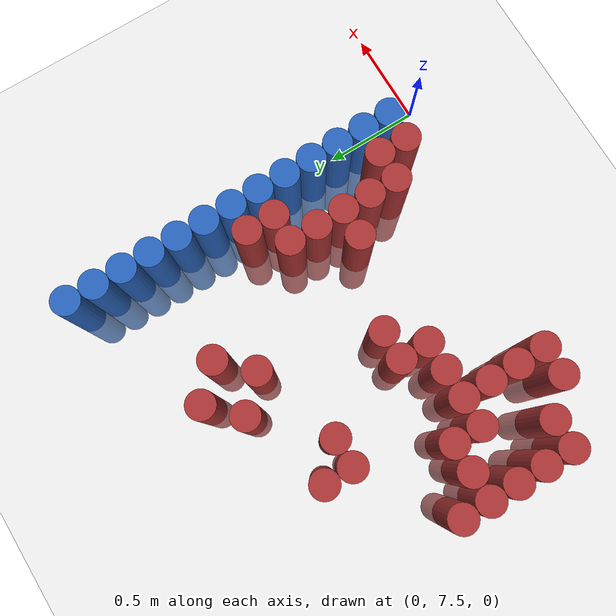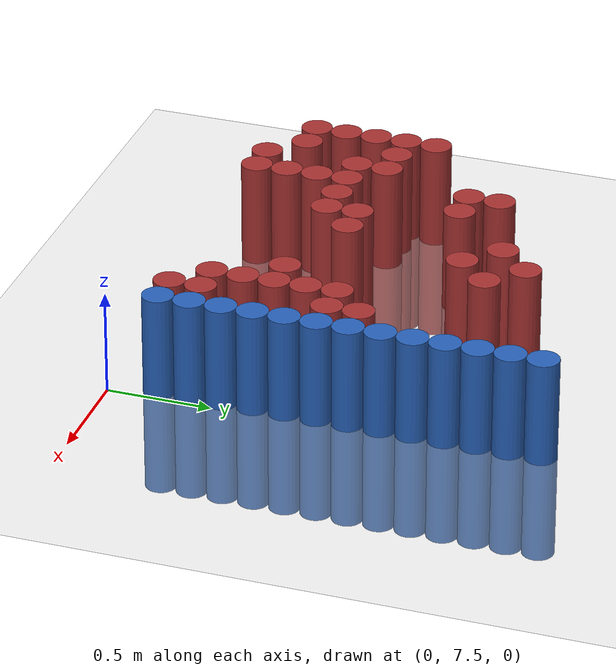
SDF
<sdf version="1.6">
 <world name="default">
  <model name="ground_plane">
   <static>1</static>
   <link name="link">
    <collision name="collision">
     <geometry><plane><normal>0 0 1</normal><size>100 100</size></plane></geometry>
     <surface><friction><ode><mu>100</mu><mu2>50</mu2></ode></friction></surface>
    </collision>
    <visual name="visual">
     <cast_shadows>0</cast_shadows>
     <geometry><plane><normal>0 0 1</normal><size>100 100</size></plane></geometry>
     <material>
      <script><uri>file://media/materials/scripts/gazebo.material</uri><name>Gazebo/Grey</name></script>
     </material>
    </visual>
   </link>
  </model>
  <model name="unit_cylinder_222">
   <static>1</static>
   <pose>-1.875000 7.875000 0.000000 0.000000 0.000000 0.000000</pose>
   <link name="link">
    <inertial>
     <mass>1</mass>
     <inertia><ixx>0.145833</ixx><ixy>0</ixy><ixz>0</ixz><iyy>0.145833</iyy><iyz>0</iyz><izz>0.125</izz></inertia>
    </inertial>
    <collision name="collision">
     <geometry><cylinder><radius>0.075000</radius><length>1</length></cylinder></geometry>
    </collision>
    <visual name="visual">
     <geometry><cylinder><radius>0.075000</radius><length>1</length></cylinder></geometry>
     <material>
      <ambient>0.648000 0.192000 0.192000 1</ambient>
      <diffuse>0.648000 0.192000 0.192000 1</diffuse>
     </material>
     <material>
      <script><name>Gazebo/Grey</name><uri>file://media/materials/scripts/gazebo.material</uri></script>
     </material>
    </visual>
   </link>
  </model>
  <model name="unit_cylinder_223">
   <static>1</static>
   <pose>-1.875000 8.025000 0.000000 0.000000 0.000000 0.000000</pose>
   <link name="link">
    <inertial>
     <mass>1</mass>
     <inertia><ixx>0.145833</ixx><ixy>0</ixy><ixz>0</ixz><iyy>0.145833</iyy><iyz>0</iyz><izz>0.125</izz></inertia>
    </inertial>
    <collision name="collision">
     <geometry><cylinder><radius>0.075000</radius><length>1</length></cylinder></geometry>
    </collision>
    <visual name="visual">
     <geometry><cylinder><radius>0.075000</radius><length>1</length></cylinder></geometry>
     <material>
      <ambient>0.648000 0.192000 0.192000 1</ambient>
      <diffuse>0.648000 0.192000 0.192000 1</diffuse>
     </material>
     <material>
      <script><name>Gazebo/Grey</name><uri>file://media/materials/scripts/gazebo.material</uri></script>
     </material>
    </visual>
   </link>
  </model>
  <model name="unit_cylinder_224">
   <static>1</static>
   <pose>-1.875000 8.175000 0.000000 0.000000 0.000000 0.000000</pose>
   <link name="link">
    <inertial>
     <mass>1</mass>
     <inertia><ixx>0.145833</ixx><ixy>0</ixy><ixz>0</ixz><iyy>0.145833</iyy><iyz>0</iyz><izz>0.125</izz></inertia>
    </inertial>
    <collision name="collision">
     <geometry><cylinder><radius>0.075000</radius><length>1</length></cylinder></geometry>
    </collision>
    <visual name="visual">
     <geometry><cylinder><radius>0.075000</radius><length>1</length></cylinder></geometry>
     <material>
      <ambient>0.648000 0.192000 0.192000 1</ambient>
      <diffuse>0.648000 0.192000 0.192000 1</diffuse>
     </material>
     <material>
      <script><name>Gazebo/Grey</name><uri>file://media/materials/scripts/gazebo.material</uri></script>
     </material>
    </visual>
   </link>
  </model>
  <model name="unit_cylinder_225">
   <static>1</static>
   <pose>-1.875000 8.325000 0.000000 0.000000 0.000000 0.000000</pose>
   <link name="link">
    <inertial>
     <mass>1</mass>
     <inertia><ixx>0.145833</ixx><ixy>0</ixy><ixz>0</ixz><iyy>0.145833</iyy><iyz>0</iyz><izz>0.125</izz></inertia>
    </inertial>
    <collision name="collision">
     <geometry><cylinder><radius>0.075000</radius><length>1</length></cylinder></geometry>
    </collision>
    <visual name="visual">
     <geometry><cylinder><radius>0.075000</radius><length>1</length></cylinder></geometry>
     <material>
      <ambient>0.648000 0.192000 0.192000 1</ambient>
      <diffuse>0.648000 0.192000 0.192000 1</diffuse>
     </material>
     <material>
      <script><name>Gazebo/Grey</name><uri>file://media/materials/scripts/gazebo.material</uri></script>
     </material>
    </visual>
   </link>
  </model>
  <model name="unit_cylinder_226">
   <static>1</static>
   <pose>-1.875000 8.475000 0.000000 0.000000 0.000000 0.000000</pose>
   <link name="link">
    <inertial>
     <mass>1</mass>
     <inertia><ixx>0.145833</ixx><ixy>0</ixy><ixz>0</ixz><iyy>0.145833</iyy><iyz>0</iyz><izz>0.125</izz></inertia>
    </inertial>
    <collision name="collision">
     <geometry><cylinder><radius>0.075000</radius><length>1</length></cylinder></geometry>
    </collision>
    <visual name="visual">
     <geometry><cylinder><radius>0.075000</radius><length>1</length></cylinder></geometry>
     <material>
      <ambient>0.648000 0.192000 0.192000 1</ambient>
      <diffuse>0.648000 0.192000 0.192000 1</diffuse>
     </material>
     <material>
      <script><name>Gazebo/Grey</name><uri>file://media/materials/scripts/gazebo.material</uri></script>
     </material>
    </visual>
   </link>
  </model>
  <model name="unit_cylinder_230">
   <static>1</static>
   <pose>-1.725000 7.875000 0.000000 0.000000 0.000000 0.000000</pose>
   <link name="link">
    <inertial>
     <mass>1</mass>
     <inertia><ixx>0.145833</ixx><ixy>0</ixy><ixz>0</ixz><iyy>0.145833</iyy><iyz>0</iyz><izz>0.125</izz></inertia>
    </inertial>
    <collision name="collision">
     <geometry><cylinder><radius>0.075000</radius><length>1</length></cylinder></geometry>
    </collision>
    <visual name="visual">
     <geometry><cylinder><radius>0.075000</radius><length>1</length></cylinder></geometry>
     <material>
      <ambient>0.648000 0.192000 0.192000 1</ambient>
      <diffuse>0.648000 0.192000 0.192000 1</diffuse>
     </material>
     <material>
      <script><name>Gazebo/Grey</name><uri>file://media/materials/scripts/gazebo.material</uri></script>
     </material>
    </visual>
   </link>
  </model>
  <model name="unit_cylinder_231">
   <static>1</static>
   <pose>-1.725000 8.325000 0.000000 0.000000 0.000000 0.000000</pose>
   <link name="link">
    <inertial>
     <mass>1</mass>
     <inertia><ixx>0.145833</ixx><ixy>0</ixy><ixz>0</ixz><iyy>0.145833</iyy><iyz>0</iyz><izz>0.125</izz></inertia>
    </inertial>
    <collision name="collision">
     <geometry><cylinder><radius>0.075000</radius><length>1</length></cylinder></geometry>
    </collision>
    <visual name="visual">
     <geometry><cylinder><radius>0.075000</radius><length>1</length></cylinder></geometry>
     <material>
      <ambient>0.648000 0.192000 0.192000 1</ambient>
      <diffuse>0.648000 0.192000 0.192000 1</diffuse>
     </material>
     <material>
      <script><name>Gazebo/Grey</name><uri>file://media/materials/scripts/gazebo.material</uri></script>
     </material>
    </visual>
   </link>
  </model>
  <model name="unit_cylinder_233">
   <static>1</static>
   <pose>-1.575000 7.725000 0.000000 0.000000 0.000000 0.000000</pose>
   <link name="link">
    <inertial>
     <mass>1</mass>
     <inertia><ixx>0.145833</ixx><ixy>0</ixy><ixz>0</ixz><iyy>0.145833</iyy><iyz>0</iyz><izz>0.125</izz></inertia>
    </inertial>
    <collision name="collision">
     <geometry><cylinder><radius>0.075000</radius><length>1</length></cylinder></geometry>
    </collision>
    <visual name="visual">
     <geometry><cylinder><radius>0.075000</radius><length>1</length></cylinder></geometry>
     <material>
      <ambient>0.648000 0.192000 0.192000 1</ambient>
      <diffuse>0.648000 0.192000 0.192000 1</diffuse>
     </material>
     <material>
      <script><name>Gazebo/Grey</name><uri>file://media/materials/scripts/gazebo.material</uri></script>
     </material>
    </visual>
   </link>
  </model>
  <model name="unit_cylinder_234">
   <static>1</static>
   <pose>-1.575000 8.175000 0.000000 0.000000 0.000000 0.000000</pose>
   <link name="link">
    <inertial>
     <mass>1</mass>
     <inertia><ixx>0.145833</ixx><ixy>0</ixy><ixz>0</ixz><iyy>0.145833</iyy><iyz>0</iyz><izz>0.125</izz></inertia>
    </inertial>
    <collision name="collision">
     <geometry><cylinder><radius>0.075000</radius><length>1</length></cylinder></geometry>
    </collision>
    <visual name="visual">
     <geometry><cylinder><radius>0.075000</radius><length>1</length></cylinder></geometry>
     <material>
      <ambient>0.648000 0.192000 0.192000 1</ambient>
      <diffuse>0.648000 0.192000 0.192000 1</diffuse>
     </material>
     <material>
      <script><name>Gazebo/Grey</name><uri>file://media/materials/scripts/gazebo.material</uri></script>
     </material>
    </visual>
   </link>
  </model>
  <model name="unit_cylinder_235">
   <static>1</static>
   <pose>-1.575000 8.325000 0.000000 0.000000 0.000000 0.000000</pose>
   <link name="link">
    <inertial>
     <mass>1</mass>
     <inertia><ixx>0.145833</ixx><ixy>0</ixy><ixz>0</ixz><iyy>0.145833</iyy><iyz>0</iyz><izz>0.125</izz></inertia>
    </inertial>
    <collision name="collision">
     <geometry><cylinder><radius>0.075000</radius><length>1</length></cylinder></geometry>
    </collision>
    <visual name="visual">
     <geometry><cylinder><radius>0.075000</radius><length>1</length></cylinder></geometry>
     <material>
      <ambient>0.648000 0.192000 0.192000 1</ambient>
      <diffuse>0.648000 0.192000 0.192000 1</diffuse>
     </material>
     <material>
      <script><name>Gazebo/Grey</name><uri>file://media/materials/scripts/gazebo.material</uri></script>
     </material>
    </visual>
   </link>
  </model>
  <model name="unit_cylinder_237">
   <static>1</static>
   <pose>-1.425000 7.725000 0.000000 0.000000 0.000000 0.000000</pose>
   <link name="link">
    <inertial>
     <mass>1</mass>
     <inertia><ixx>0.145833</ixx><ixy>0</ixy><ixz>0</ixz><iyy>0.145833</iyy><iyz>0</iyz><izz>0.125</izz></inertia>
    </inertial>
    <collision name="collision">
     <geometry><cylinder><radius>0.075000</radius><length>1</length></cylinder></geometry>
    </collision>
    <visual name="visual">
     <geometry><cylinder><radius>0.075000</radius><length>1</length></cylinder></geometry>
     <material>
      <ambient>0.648000 0.192000 0.192000 1</ambient>
      <diffuse>0.648000 0.192000 0.192000 1</diffuse>
     </material>
     <material>
      <script><name>Gazebo/Grey</name><uri>file://media/materials/scripts/gazebo.material</uri></script>
     </material>
    </visual>
   </link>
  </model>
  <model name="unit_cylinder_238">
   <static>1</static>
   <pose>-1.425000 7.875000 0.000000 0.000000 0.000000 0.000000</pose>
   <link name="link">
    <inertial>
     <mass>1</mass>
     <inertia><ixx>0.145833</ixx><ixy>0</ixy><ixz>0</ixz><iyy>0.145833</iyy><iyz>0</iyz><izz>0.125</izz></inertia>
    </inertial>
    <collision name="collision">
     <geometry><cylinder><radius>0.075000</radius><length>1</length></cylinder></geometry>
    </collision>
    <visual name="visual">
     <geometry><cylinder><radius>0.075000</radius><length>1</length></cylinder></geometry>
     <material>
      <ambient>0.648000 0.192000 0.192000 1</ambient>
      <diffuse>0.648000 0.192000 0.192000 1</diffuse>
     </material>
     <material>
      <script><name>Gazebo/Grey</name><uri>file://media/materials/scripts/gazebo.material</uri></script>
     </material>
    </visual>
   </link>
  </model>
  <model name="unit_cylinder_239">
   <static>1</static>
   <pose>-1.425000 8.025000 0.000000 0.000000 0.000000 0.000000</pose>
   <link name="link">
    <inertial>
     <mass>1</mass>
     <inertia><ixx>0.145833</ixx><ixy>0</ixy><ixz>0</ixz><iyy>0.145833</iyy><iyz>0</iyz><izz>0.125</izz></inertia>
    </inertial>
    <collision name="collision">
     <geometry><cylinder><radius>0.075000</radius><length>1</length></cylinder></geometry>
    </collision>
    <visual name="visual">
     <geometry><cylinder><radius>0.075000</radius><length>1</length></cylinder></geometry>
     <material>
      <ambient>0.648000 0.192000 0.192000 1</ambient>
      <diffuse>0.648000 0.192000 0.192000 1</diffuse>
     </material>
     <material>
      <script><name>Gazebo/Grey</name><uri>file://media/materials/scripts/gazebo.material</uri></script>
     </material>
    </visual>
   </link>
  </model>
  <model name="unit_cylinder_240">
   <static>1</static>
   <pose>-1.425000 8.175000 0.000000 0.000000 0.000000 0.000000</pose>
   <link name="link">
    <inertial>
     <mass>1</mass>
     <inertia><ixx>0.145833</ixx><ixy>0</ixy><ixz>0</ixz><iyy>0.145833</iyy><iyz>0</iyz><izz>0.125</izz></inertia>
    </inertial>
    <collision name="collision">
     <geometry><cylinder><radius>0.075000</radius><length>1</length></cylinder></geometry>
    </collision>
    <visual name="visual">
     <geometry><cylinder><radius>0.075000</radius><length>1</length></cylinder></geometry>
     <material>
      <ambient>0.648000 0.192000 0.192000 1</ambient>
      <diffuse>0.648000 0.192000 0.192000 1</diffuse>
     </material>
     <material>
      <script><name>Gazebo/Grey</name><uri>file://media/materials/scripts/gazebo.material</uri></script>
     </material>
    </visual>
   </link>
  </model>
  <model name="unit_cylinder_241">
   <static>1</static>
   <pose>-1.425000 8.775000 0.000000 0.000000 0.000000 0.000000</pose>
   <link name="link">
    <inertial>
     <mass>1</mass>
     <inertia><ixx>0.145833</ixx><ixy>0</ixy><ixz>0</ixz><iyy>0.145833</iyy><iyz>0</iyz><izz>0.125</izz></inertia>
    </inertial>
    <collision name="collision">
     <geometry><cylinder><radius>0.075000</radius><length>1</length></cylinder></geometry>
    </collision>
    <visual name="visual">
     <geometry><cylinder><radius>0.075000</radius><length>1</length></cylinder></geometry>
     <material>
      <ambient>0.648000 0.192000 0.192000 1</ambient>
      <diffuse>0.648000 0.192000 0.192000 1</diffuse>
     </material>
     <material>
      <script><name>Gazebo/Grey</name><uri>file://media/materials/scripts/gazebo.material</uri></script>
     </material>
    </visual>
   </link>
  </model>
  <model name="unit_cylinder_242">
   <static>1</static>
   <pose>-1.425000 8.925000 0.000000 0.000000 0.000000 0.000000</pose>
   <link name="link">
    <inertial>
     <mass>1</mass>
     <inertia><ixx>0.145833</ixx><ixy>0</ixy><ixz>0</ixz><iyy>0.145833</iyy><iyz>0</iyz><izz>0.125</izz></inertia>
    </inertial>
    <collision name="collision">
     <geometry><cylinder><radius>0.075000</radius><length>1</length></cylinder></geometry>
    </collision>
    <visual name="visual">
     <geometry><cylinder><radius>0.075000</radius><length>1</length></cylinder></geometry>
     <material>
      <ambient>0.648000 0.192000 0.192000 1</ambient>
      <diffuse>0.648000 0.192000 0.192000 1</diffuse>
     </material>
     <material>
      <script><name>Gazebo/Grey</name><uri>file://media/materials/scripts/gazebo.material</uri></script>
     </material>
    </visual>
   </link>
  </model>
  <model name="unit_cylinder_245">
   <static>1</static>
   <pose>-1.275000 8.175000 0.000000 0.000000 0.000000 0.000000</pose>
   <link name="link">
    <inertial>
     <mass>1</mass>
     <inertia><ixx>0.145833</ixx><ixy>0</ixy><ixz>0</ixz><iyy>0.145833</iyy><iyz>0</iyz><izz>0.125</izz></inertia>
    </inertial>
    <collision name="collision">
     <geometry><cylinder><radius>0.075000</radius><length>1</length></cylinder></geometry>
    </collision>
    <visual name="visual">
     <geometry><cylinder><radius>0.075000</radius><length>1</length></cylinder></geometry>
     <material>
      <ambient>0.648000 0.192000 0.192000 1</ambient>
      <diffuse>0.648000 0.192000 0.192000 1</diffuse>
     </material>
     <material>
      <script><name>Gazebo/Grey</name><uri>file://media/materials/scripts/gazebo.material</uri></script>
     </material>
    </visual>
   </link>
  </model>
  <model name="unit_cylinder_246">
   <static>1</static>
   <pose>-1.275000 8.775000 0.000000 0.000000 0.000000 0.000000</pose>
   <link name="link">
    <inertial>
     <mass>1</mass>
     <inertia><ixx>0.145833</ixx><ixy>0</ixy><ixz>0</ixz><iyy>0.145833</iyy><iyz>0</iyz><izz>0.125</izz></inertia>
    </inertial>
    <collision name="collision">
     <geometry><cylinder><radius>0.075000</radius><length>1</length></cylinder></geometry>
    </collision>
    <visual name="visual">
     <geometry><cylinder><radius>0.075000</radius><length>1</length></cylinder></geometry>
     <material>
      <ambient>0.648000 0.192000 0.192000 1</ambient>
      <diffuse>0.648000 0.192000 0.192000 1</diffuse>
     </material>
     <material>
      <script><name>Gazebo/Grey</name><uri>file://media/materials/scripts/gazebo.material</uri></script>
     </material>
    </visual>
   </link>
  </model>
  <model name="unit_cylinder_250">
   <static>1</static>
   <pose>-1.125000 8.175000 0.000000 0.000000 0.000000 0.000000</pose>
   <link name="link">
    <inertial>
     <mass>1</mass>
     <inertia><ixx>0.145833</ixx><ixy>0</ixy><ixz>0</ixz><iyy>0.145833</iyy><iyz>0</iyz><izz>0.125</izz></inertia>
    </inertial>
    <collision name="collision">
     <geometry><cylinder><radius>0.075000</radius><length>1</length></cylinder></geometry>
    </collision>
    <visual name="visual">
     <geometry><cylinder><radius>0.075000</radius><length>1</length></cylinder></geometry>
     <material>
      <ambient>0.648000 0.192000 0.192000 1</ambient>
      <diffuse>0.648000 0.192000 0.192000 1</diffuse>
     </material>
     <material>
      <script><name>Gazebo/Grey</name><uri>file://media/materials/scripts/gazebo.material</uri></script>
     </material>
    </visual>
   </link>
  </model>
  <model name="unit_cylinder_251">
   <static>1</static>
   <pose>-1.125000 8.325000 0.000000 0.000000 0.000000 0.000000</pose>
   <link name="link">
    <inertial>
     <mass>1</mass>
     <inertia><ixx>0.145833</ixx><ixy>0</ixy><ixz>0</ixz><iyy>0.145833</iyy><iyz>0</iyz><izz>0.125</izz></inertia>
    </inertial>
    <collision name="collision">
     <geometry><cylinder><radius>0.075000</radius><length>1</length></cylinder></geometry>
    </collision>
    <visual name="visual">
     <geometry><cylinder><radius>0.075000</radius><length>1</length></cylinder></geometry>
     <material>
      <ambient>0.648000 0.192000 0.192000 1</ambient>
      <diffuse>0.648000 0.192000 0.192000 1</diffuse>
     </material>
     <material>
      <script><name>Gazebo/Grey</name><uri>file://media/materials/scripts/gazebo.material</uri></script>
     </material>
    </visual>
   </link>
  </model>
  <model name="unit_cylinder_259">
   <static>1</static>
   <pose>-0.975000 8.325000 0.000000 0.000000 0.000000 0.000000</pose>
   <link name="link">
    <inertial>
     <mass>1</mass>
     <inertia><ixx>0.145833</ixx><ixy>0</ixy><ixz>0</ixz><iyy>0.145833</iyy><iyz>0</iyz><izz>0.125</izz></inertia>
    </inertial>
    <collision name="collision">
     <geometry><cylinder><radius>0.075000</radius><length>1</length></cylinder></geometry>
    </collision>
    <visual name="visual">
     <geometry><cylinder><radius>0.075000</radius><length>1</length></cylinder></geometry>
     <material>
      <ambient>0.648000 0.192000 0.192000 1</ambient>
      <diffuse>0.648000 0.192000 0.192000 1</diffuse>
     </material>
     <material>
      <script><name>Gazebo/Grey</name><uri>file://media/materials/scripts/gazebo.material</uri></script>
     </material>
    </visual>
   </link>
  </model>
  <model name="unit_cylinder_260">
   <static>1</static>
   <pose>-0.975000 9.075000 0.000000 0.000000 0.000000 0.000000</pose>
   <link name="link">
    <inertial>
     <mass>1</mass>
     <inertia><ixx>0.145833</ixx><ixy>0</ixy><ixz>0</ixz><iyy>0.145833</iyy><iyz>0</iyz><izz>0.125</izz></inertia>
    </inertial>
    <collision name="collision">
     <geometry><cylinder><radius>0.075000</radius><length>1</length></cylinder></geometry>
    </collision>
    <visual name="visual">
     <geometry><cylinder><radius>0.075000</radius><length>1</length></cylinder></geometry>
     <material>
      <ambient>0.648000 0.192000 0.192000 1</ambient>
      <diffuse>0.648000 0.192000 0.192000 1</diffuse>
     </material>
     <material>
      <script><name>Gazebo/Grey</name><uri>file://media/materials/scripts/gazebo.material</uri></script>
     </material>
    </visual>
   </link>
  </model>
  <model name="unit_cylinder_272">
   <static>1</static>
   <pose>-0.825000 8.925000 0.000000 0.000000 0.000000 0.000000</pose>
   <link name="link">
    <inertial>
     <mass>1</mass>
     <inertia><ixx>0.145833</ixx><ixy>0</ixy><ixz>0</ixz><iyy>0.145833</iyy><iyz>0</iyz><izz>0.125</izz></inertia>
    </inertial>
    <collision name="collision">
     <geometry><cylinder><radius>0.075000</radius><length>1</length></cylinder></geometry>
    </collision>
    <visual name="visual">
     <geometry><cylinder><radius>0.075000</radius><length>1</length></cylinder></geometry>
     <material>
      <ambient>0.648000 0.192000 0.192000 1</ambient>
      <diffuse>0.648000 0.192000 0.192000 1</diffuse>
     </material>
     <material>
      <script><name>Gazebo/Grey</name><uri>file://media/materials/scripts/gazebo.material</uri></script>
     </material>
    </visual>
   </link>
  </model>
  <model name="unit_cylinder_273">
   <static>1</static>
   <pose>-0.825000 9.225000 0.000000 0.000000 0.000000 0.000000</pose>
   <link name="link">
    <inertial>
     <mass>1</mass>
     <inertia><ixx>0.145833</ixx><ixy>0</ixy><ixz>0</ixz><iyy>0.145833</iyy><iyz>0</iyz><izz>0.125</izz></inertia>
    </inertial>
    <collision name="collision">
     <geometry><cylinder><radius>0.075000</radius><length>1</length></cylinder></geometry>
    </collision>
    <visual name="visual">
     <geometry><cylinder><radius>0.075000</radius><length>1</length></cylinder></geometry>
     <material>
      <ambient>0.648000 0.192000 0.192000 1</ambient>
      <diffuse>0.648000 0.192000 0.192000 1</diffuse>
     </material>
     <material>
      <script><name>Gazebo/Grey</name><uri>file://media/materials/scripts/gazebo.material</uri></script>
     </material>
    </visual>
   </link>
  </model>
  <model name="unit_cylinder_281">
   <static>1</static>
   <pose>-0.675000 9.075000 0.000000 0.000000 0.000000 0.000000</pose>
   <link name="link">
    <inertial>
     <mass>1</mass>
     <inertia><ixx>0.145833</ixx><ixy>0</ixy><ixz>0</ixz><iyy>0.145833</iyy><iyz>0</iyz><izz>0.125</izz></inertia>
    </inertial>
    <collision name="collision">
     <geometry><cylinder><radius>0.075000</radius><length>1</length></cylinder></geometry>
    </collision>
    <visual name="visual">
     <geometry><cylinder><radius>0.075000</radius><length>1</length></cylinder></geometry>
     <material>
      <ambient>0.648000 0.192000 0.192000 1</ambient>
      <diffuse>0.648000 0.192000 0.192000 1</diffuse>
     </material>
     <material>
      <script><name>Gazebo/Grey</name><uri>file://media/materials/scripts/gazebo.material</uri></script>
     </material>
    </visual>
   </link>
  </model>
  <model name="unit_cylinder_290">
   <static>1</static>
   <pose>-0.525000 8.175000 0.000000 0.000000 0.000000 0.000000</pose>
   <link name="link">
    <inertial>
     <mass>1</mass>
     <inertia><ixx>0.145833</ixx><ixy>0</ixy><ixz>0</ixz><iyy>0.145833</iyy><iyz>0</iyz><izz>0.125</izz></inertia>
    </inertial>
    <collision name="collision">
     <geometry><cylinder><radius>0.075000</radius><length>1</length></cylinder></geometry>
    </collision>
    <visual name="visual">
     <geometry><cylinder><radius>0.075000</radius><length>1</length></cylinder></geometry>
     <material>
      <ambient>0.648000 0.192000 0.192000 1</ambient>
      <diffuse>0.648000 0.192000 0.192000 1</diffuse>
     </material>
     <material>
      <script><name>Gazebo/Grey</name><uri>file://media/materials/scripts/gazebo.material</uri></script>
     </material>
    </visual>
   </link>
  </model>
  <model name="unit_cylinder_293">
   <static>1</static>
   <pose>-0.375000 7.875000 0.000000 0.000000 0.000000 0.000000</pose>
   <link name="link">
    <inertial>
     <mass>1</mass>
     <inertia><ixx>0.145833</ixx><ixy>0</ixy><ixz>0</ixz><iyy>0.145833</iyy><iyz>0</iyz><izz>0.125</izz></inertia>
    </inertial>
    <collision name="collision">
     <geometry><cylinder><radius>0.075000</radius><length>1</length></cylinder></geometry>
    </collision>
    <visual name="visual">
     <geometry><cylinder><radius>0.075000</radius><length>1</length></cylinder></geometry>
     <material>
      <ambient>0.648000 0.192000 0.192000 1</ambient>
      <diffuse>0.648000 0.192000 0.192000 1</diffuse>
     </material>
     <material>
      <script><name>Gazebo/Grey</name><uri>file://media/materials/scripts/gazebo.material</uri></script>
     </material>
    </visual>
   </link>
  </model>
  <model name="unit_cylinder_294">
   <static>1</static>
   <pose>-0.375000 8.025000 0.000000 0.000000 0.000000 0.000000</pose>
   <link name="link">
    <inertial>
     <mass>1</mass>
     <inertia><ixx>0.145833</ixx><ixy>0</ixy><ixz>0</ixz><iyy>0.145833</iyy><iyz>0</iyz><izz>0.125</izz></inertia>
    </inertial>
    <collision name="collision">
     <geometry><cylinder><radius>0.075000</radius><length>1</length></cylinder></geometry>
    </collision>
    <visual name="visual">
     <geometry><cylinder><radius>0.075000</radius><length>1</length></cylinder></geometry>
     <material>
      <ambient>0.648000 0.192000 0.192000 1</ambient>
      <diffuse>0.648000 0.192000 0.192000 1</diffuse>
     </material>
     <material>
      <script><name>Gazebo/Grey</name><uri>file://media/materials/scripts/gazebo.material</uri></script>
     </material>
    </visual>
   </link>
  </model>
  <model name="unit_cylinder_295">
   <static>1</static>
   <pose>-0.375000 8.175000 0.000000 0.000000 0.000000 0.000000</pose>
   <link name="link">
    <inertial>
     <mass>1</mass>
     <inertia><ixx>0.145833</ixx><ixy>0</ixy><ixz>0</ixz><iyy>0.145833</iyy><iyz>0</iyz><izz>0.125</izz></inertia>
    </inertial>
    <collision name="collision">
     <geometry><cylinder><radius>0.075000</radius><length>1</length></cylinder></geometry>
    </collision>
    <visual name="visual">
     <geometry><cylinder><radius>0.075000</radius><length>1</length></cylinder></geometry>
     <material>
      <ambient>0.648000 0.192000 0.192000 1</ambient>
      <diffuse>0.648000 0.192000 0.192000 1</diffuse>
     </material>
     <material>
      <script><name>Gazebo/Grey</name><uri>file://media/materials/scripts/gazebo.material</uri></script>
     </material>
    </visual>
   </link>
  </model>
  <model name="unit_cylinder_296">
   <static>1</static>
   <pose>-0.375000 8.325000 0.000000 0.000000 0.000000 0.000000</pose>
   <link name="link">
    <inertial>
     <mass>1</mass>
     <inertia><ixx>0.145833</ixx><ixy>0</ixy><ixz>0</ixz><iyy>0.145833</iyy><iyz>0</iyz><izz>0.125</izz></inertia>
    </inertial>
    <collision name="collision">
     <geometry><cylinder><radius>0.075000</radius><length>1</length></cylinder></geometry>
    </collision>
    <visual name="visual">
     <geometry><cylinder><radius>0.075000</radius><length>1</length></cylinder></geometry>
     <material>
      <ambient>0.648000 0.192000 0.192000 1</ambient>
      <diffuse>0.648000 0.192000 0.192000 1</diffuse>
     </material>
     <material>
      <script><name>Gazebo/Grey</name><uri>file://media/materials/scripts/gazebo.material</uri></script>
     </material>
    </visual>
   </link>
  </model>
  <model name="unit_cylinder_297">
   <static>1</static>
   <pose>-0.375000 8.475000 0.000000 0.000000 0.000000 0.000000</pose>
   <link name="link">
    <inertial>
     <mass>1</mass>
     <inertia><ixx>0.145833</ixx><ixy>0</ixy><ixz>0</ixz><iyy>0.145833</iyy><iyz>0</iyz><izz>0.125</izz></inertia>
    </inertial>
    <collision name="collision">
     <geometry><cylinder><radius>0.075000</radius><length>1</length></cylinder></geometry>
    </collision>
    <visual name="visual">
     <geometry><cylinder><radius>0.075000</radius><length>1</length></cylinder></geometry>
     <material>
      <ambient>0.648000 0.192000 0.192000 1</ambient>
      <diffuse>0.648000 0.192000 0.192000 1</diffuse>
     </material>
     <material>
      <script><name>Gazebo/Grey</name><uri>file://media/materials/scripts/gazebo.material</uri></script>
     </material>
    </visual>
   </link>
  </model>
  <model name="unit_cylinder_301">
   <static>1</static>
   <pose>-0.225000 7.725000 0.000000 0.000000 0.000000 0.000000</pose>
   <link name="link">
    <inertial>
     <mass>1</mass>
     <inertia><ixx>0.145833</ixx><ixy>0</ixy><ixz>0</ixz><iyy>0.145833</iyy><iyz>0</iyz><izz>0.125</izz></inertia>
    </inertial>
    <collision name="collision">
     <geometry><cylinder><radius>0.075000</radius><length>1</length></cylinder></geometry>
    </collision>
    <visual name="visual">
     <geometry><cylinder><radius>0.075000</radius><length>1</length></cylinder></geometry>
     <material>
      <ambient>0.648000 0.192000 0.192000 1</ambient>
      <diffuse>0.648000 0.192000 0.192000 1</diffuse>
     </material>
     <material>
      <script><name>Gazebo/Grey</name><uri>file://media/materials/scripts/gazebo.material</uri></script>
     </material>
    </visual>
   </link>
  </model>
  <model name="unit_cylinder_302">
   <static>1</static>
   <pose>-0.225000 7.875000 0.000000 0.000000 0.000000 0.000000</pose>
   <link name="link">
    <inertial>
     <mass>1</mass>
     <inertia><ixx>0.145833</ixx><ixy>0</ixy><ixz>0</ixz><iyy>0.145833</iyy><iyz>0</iyz><izz>0.125</izz></inertia>
    </inertial>
    <collision name="collision">
     <geometry><cylinder><radius>0.075000</radius><length>1</length></cylinder></geometry>
    </collision>
    <visual name="visual">
     <geometry><cylinder><radius>0.075000</radius><length>1</length></cylinder></geometry>
     <material>
      <ambient>0.648000 0.192000 0.192000 1</ambient>
      <diffuse>0.648000 0.192000 0.192000 1</diffuse>
     </material>
     <material>
      <script><name>Gazebo/Grey</name><uri>file://media/materials/scripts/gazebo.material</uri></script>
     </material>
    </visual>
   </link>
  </model>
  <model name="unit_cylinder_303">
   <static>1</static>
   <pose>-0.225000 8.475000 0.000000 0.000000 0.000000 0.000000</pose>
   <link name="link">
    <inertial>
     <mass>1</mass>
     <inertia><ixx>0.145833</ixx><ixy>0</ixy><ixz>0</ixz><iyy>0.145833</iyy><iyz>0</iyz><izz>0.125</izz></inertia>
    </inertial>
    <collision name="collision">
     <geometry><cylinder><radius>0.075000</radius><length>1</length></cylinder></geometry>
    </collision>
    <visual name="visual">
     <geometry><cylinder><radius>0.075000</radius><length>1</length></cylinder></geometry>
     <material>
      <ambient>0.648000 0.192000 0.192000 1</ambient>
      <diffuse>0.648000 0.192000 0.192000 1</diffuse>
     </material>
     <material>
      <script><name>Gazebo/Grey</name><uri>file://media/materials/scripts/gazebo.material</uri></script>
     </material>
    </visual>
   </link>
  </model>
  <model name="unit_cylinder_304">
   <static>1</static>
   <pose>-0.225000 8.625000 0.000000 0.000000 0.000000 0.000000</pose>
   <link name="link">
    <inertial>
     <mass>1</mass>
     <inertia><ixx>0.145833</ixx><ixy>0</ixy><ixz>0</ixz><iyy>0.145833</iyy><iyz>0</iyz><izz>0.125</izz></inertia>
    </inertial>
    <collision name="collision">
     <geometry><cylinder><radius>0.075000</radius><length>1</length></cylinder></geometry>
    </collision>
    <visual name="visual">
     <geometry><cylinder><radius>0.075000</radius><length>1</length></cylinder></geometry>
     <material>
      <ambient>0.648000 0.192000 0.192000 1</ambient>
      <diffuse>0.648000 0.192000 0.192000 1</diffuse>
     </material>
     <material>
      <script><name>Gazebo/Grey</name><uri>file://media/materials/scripts/gazebo.material</uri></script>
     </material>
    </visual>
   </link>
  </model>
  <model name="unit_cylinder_322">
   <static>1</static>
   <pose>-0.075000 7.725000 0.000000 0.000000 0.000000 0.000000</pose>
   <link name="link">
    <inertial>
     <mass>1</mass>
     <inertia><ixx>0.145833</ixx><ixy>0</ixy><ixz>0</ixz><iyy>0.145833</iyy><iyz>0</iyz><izz>0.125</izz></inertia>
    </inertial>
    <collision name="collision">
     <geometry><cylinder><radius>0.075000</radius><length>1</length></cylinder></geometry>
    </collision>
    <visual name="visual">
     <geometry><cylinder><radius>0.075000</radius><length>1</length></cylinder></geometry>
     <material>
      <ambient>0.152000 0.379000 0.720000 1</ambient>
      <diffuse>0.152000 0.379000 0.720000 1</diffuse>
     </material>
     <material>
      <script><name>Gazebo/Grey</name><uri>file://media/materials/scripts/gazebo.material</uri></script>
     </material>
    </visual>
   </link>
  </model>
  <model name="unit_cylinder_323">
   <static>1</static>
   <pose>-0.075000 7.875000 0.000000 0.000000 0.000000 0.000000</pose>
   <link name="link">
    <inertial>
     <mass>1</mass>
     <inertia><ixx>0.145833</ixx><ixy>0</ixy><ixz>0</ixz><iyy>0.145833</iyy><iyz>0</iyz><izz>0.125</izz></inertia>
    </inertial>
    <collision name="collision">
     <geometry><cylinder><radius>0.075000</radius><length>1</length></cylinder></geometry>
    </collision>
    <visual name="visual">
     <geometry><cylinder><radius>0.075000</radius><length>1</length></cylinder></geometry>
     <material>
      <ambient>0.152000 0.379000 0.720000 1</ambient>
      <diffuse>0.152000 0.379000 0.720000 1</diffuse>
     </material>
     <material>
      <script><name>Gazebo/Grey</name><uri>file://media/materials/scripts/gazebo.material</uri></script>
     </material>
    </visual>
   </link>
  </model>
  <model name="unit_cylinder_324">
   <static>1</static>
   <pose>-0.075000 8.025000 0.000000 0.000000 0.000000 0.000000</pose>
   <link name="link">
    <inertial>
     <mass>1</mass>
     <inertia><ixx>0.145833</ixx><ixy>0</ixy><ixz>0</ixz><iyy>0.145833</iyy><iyz>0</iyz><izz>0.125</izz></inertia>
    </inertial>
    <collision name="collision">
     <geometry><cylinder><radius>0.075000</radius><length>1</length></cylinder></geometry>
    </collision>
    <visual name="visual">
     <geometry><cylinder><radius>0.075000</radius><length>1</length></cylinder></geometry>
     <material>
      <ambient>0.152000 0.379000 0.720000 1</ambient>
      <diffuse>0.152000 0.379000 0.720000 1</diffuse>
     </material>
     <material>
      <script><name>Gazebo/Grey</name><uri>file://media/materials/scripts/gazebo.material</uri></script>
     </material>
    </visual>
   </link>
  </model>
  <model name="unit_cylinder_325">
   <static>1</static>
   <pose>-0.075000 8.175000 0.000000 0.000000 0.000000 0.000000</pose>
   <link name="link">
    <inertial>
     <mass>1</mass>
     <inertia><ixx>0.145833</ixx><ixy>0</ixy><ixz>0</ixz><iyy>0.145833</iyy><iyz>0</iyz><izz>0.125</izz></inertia>
    </inertial>
    <collision name="collision">
     <geometry><cylinder><radius>0.075000</radius><length>1</length></cylinder></geometry>
    </collision>
    <visual name="visual">
     <geometry><cylinder><radius>0.075000</radius><length>1</length></cylinder></geometry>
     <material>
      <ambient>0.152000 0.379000 0.720000 1</ambient>
      <diffuse>0.152000 0.379000 0.720000 1</diffuse>
     </material>
     <material>
      <script><name>Gazebo/Grey</name><uri>file://media/materials/scripts/gazebo.material</uri></script>
     </material>
    </visual>
   </link>
  </model>
  <model name="unit_cylinder_326">
   <static>1</static>
   <pose>-0.075000 8.325000 0.000000 0.000000 0.000000 0.000000</pose>
   <link name="link">
    <inertial>
     <mass>1</mass>
     <inertia><ixx>0.145833</ixx><ixy>0</ixy><ixz>0</ixz><iyy>0.145833</iyy><iyz>0</iyz><izz>0.125</izz></inertia>
    </inertial>
    <collision name="collision">
     <geometry><cylinder><radius>0.075000</radius><length>1</length></cylinder></geometry>
    </collision>
    <visual name="visual">
     <geometry><cylinder><radius>0.075000</radius><length>1</length></cylinder></geometry>
     <material>
      <ambient>0.152000 0.379000 0.720000 1</ambient>
      <diffuse>0.152000 0.379000 0.720000 1</diffuse>
     </material>
     <material>
      <script><name>Gazebo/Grey</name><uri>file://media/materials/scripts/gazebo.material</uri></script>
     </material>
    </visual>
   </link>
  </model>
  <model name="unit_cylinder_327">
   <static>1</static>
   <pose>-0.075000 8.475000 0.000000 0.000000 0.000000 0.000000</pose>
   <link name="link">
    <inertial>
     <mass>1</mass>
     <inertia><ixx>0.145833</ixx><ixy>0</ixy><ixz>0</ixz><iyy>0.145833</iyy><iyz>0</iyz><izz>0.125</izz></inertia>
    </inertial>
    <collision name="collision">
     <geometry><cylinder><radius>0.075000</radius><length>1</length></cylinder></geometry>
    </collision>
    <visual name="visual">
     <geometry><cylinder><radius>0.075000</radius><length>1</length></cylinder></geometry>
     <material>
      <ambient>0.152000 0.379000 0.720000 1</ambient>
      <diffuse>0.152000 0.379000 0.720000 1</diffuse>
     </material>
     <material>
      <script><name>Gazebo/Grey</name><uri>file://media/materials/scripts/gazebo.material</uri></script>
     </material>
    </visual>
   </link>
  </model>
  <model name="unit_cylinder_328">
   <static>1</static>
   <pose>-0.075000 8.625000 0.000000 0.000000 0.000000 0.000000</pose>
   <link name="link">
    <inertial>
     <mass>1</mass>
     <inertia><ixx>0.145833</ixx><ixy>0</ixy><ixz>0</ixz><iyy>0.145833</iyy><iyz>0</iyz><izz>0.125</izz></inertia>
    </inertial>
    <collision name="collision">
     <geometry><cylinder><radius>0.075000</radius><length>1</length></cylinder></geometry>
    </collision>
    <visual name="visual">
     <geometry><cylinder><radius>0.075000</radius><length>1</length></cylinder></geometry>
     <material>
      <ambient>0.152000 0.379000 0.720000 1</ambient>
      <diffuse>0.152000 0.379000 0.720000 1</diffuse>
     </material>
     <material>
      <script><name>Gazebo/Grey</name><uri>file://media/materials/scripts/gazebo.material</uri></script>
     </material>
    </visual>
   </link>
  </model>
  <model name="unit_cylinder_329">
   <static>1</static>
   <pose>-0.075000 8.775000 0.000000 0.000000 0.000000 0.000000</pose>
   <link name="link">
    <inertial>
     <mass>1</mass>
     <inertia><ixx>0.145833</ixx><ixy>0</ixy><ixz>0</ixz><iyy>0.145833</iyy><iyz>0</iyz><izz>0.125</izz></inertia>
    </inertial>
    <collision name="collision">
     <geometry><cylinder><radius>0.075000</radius><length>1</length></cylinder></geometry>
    </collision>
    <visual name="visual">
     <geometry><cylinder><radius>0.075000</radius><length>1</length></cylinder></geometry>
     <material>
      <ambient>0.152000 0.379000 0.720000 1</ambient>
      <diffuse>0.152000 0.379000 0.720000 1</diffuse>
     </material>
     <material>
      <script><name>Gazebo/Grey</name><uri>file://media/materials/scripts/gazebo.material</uri></script>
     </material>
    </visual>
   </link>
  </model>
  <model name="unit_cylinder_330">
   <static>1</static>
   <pose>-0.075000 8.925000 0.000000 0.000000 0.000000 0.000000</pose>
   <link name="link">
    <inertial>
     <mass>1</mass>
     <inertia><ixx>0.145833</ixx><ixy>0</ixy><ixz>0</ixz><iyy>0.145833</iyy><iyz>0</iyz><izz>0.125</izz></inertia>
    </inertial>
    <collision name="collision">
     <geometry><cylinder><radius>0.075000</radius><length>1</length></cylinder></geometry>
    </collision>
    <visual name="visual">
     <geometry><cylinder><radius>0.075000</radius><length>1</length></cylinder></geometry>
     <material>
      <ambient>0.152000 0.379000 0.720000 1</ambient>
      <diffuse>0.152000 0.379000 0.720000 1</diffuse>
     </material>
     <material>
      <script><name>Gazebo/Grey</name><uri>file://media/materials/scripts/gazebo.material</uri></script>
     </material>
    </visual>
   </link>
  </model>
  <model name="unit_cylinder_331">
   <static>1</static>
   <pose>-0.075000 9.075000 0.000000 0.000000 0.000000 0.000000</pose>
   <link name="link">
    <inertial>
     <mass>1</mass>
     <inertia><ixx>0.145833</ixx><ixy>0</ixy><ixz>0</ixz><iyy>0.145833</iyy><iyz>0</iyz><izz>0.125</izz></inertia>
    </inertial>
    <collision name="collision">
     <geometry><cylinder><radius>0.075000</radius><length>1</length></cylinder></geometry>
    </collision>
    <visual name="visual">
     <geometry><cylinder><radius>0.075000</radius><length>1</length></cylinder></geometry>
     <material>
      <ambient>0.152000 0.379000 0.720000 1</ambient>
      <diffuse>0.152000 0.379000 0.720000 1</diffuse>
     </material>
     <material>
      <script><name>Gazebo/Grey</name><uri>file://media/materials/scripts/gazebo.material</uri></script>
     </material>
    </visual>
   </link>
  </model>
  <model name="unit_cylinder_332">
   <static>1</static>
   <pose>-0.075000 9.225000 0.000000 0.000000 0.000000 0.000000</pose>
   <link name="link">
    <inertial>
     <mass>1</mass>
     <inertia><ixx>0.145833</ixx><ixy>0</ixy><ixz>0</ixz><iyy>0.145833</iyy><iyz>0</iyz><izz>0.125</izz></inertia>
    </inertial>
    <collision name="collision">
     <geometry><cylinder><radius>0.075000</radius><length>1</length></cylinder></geometry>
    </collision>
    <visual name="visual">
     <geometry><cylinder><radius>0.075000</radius><length>1</length></cylinder></geometry>
     <material>
      <ambient>0.152000 0.379000 0.720000 1</ambient>
      <diffuse>0.152000 0.379000 0.720000 1</diffuse>
     </material>
     <material>
      <script><name>Gazebo/Grey</name><uri>file://media/materials/scripts/gazebo.material</uri></script>
     </material>
    </visual>
   </link>
  </model>
  <model name="unit_cylinder_333">
   <static>1</static>
   <pose>-0.075000 9.375000 0.000000 0.000000 0.000000 0.000000</pose>
   <link name="link">
    <inertial>
     <mass>1</mass>
     <inertia><ixx>0.145833</ixx><ixy>0</ixy><ixz>0</ixz><iyy>0.145833</iyy><iyz>0</iyz><izz>0.125</izz></inertia>
    </inertial>
    <collision name="collision">
     <geometry><cylinder><radius>0.075000</radius><length>1</length></cylinder></geometry>
    </collision>
    <visual name="visual">
     <geometry><cylinder><radius>0.075000</radius><length>1</length></cylinder></geometry>
     <material>
      <ambient>0.152000 0.379000 0.720000 1</ambient>
      <diffuse>0.152000 0.379000 0.720000 1</diffuse>
     </material>
     <material>
      <script><name>Gazebo/Grey</name><uri>file://media/materials/scripts/gazebo.material</uri></script>
     </material>
    </visual>
   </link>
  </model>
  <model name="unit_cylinder_334">
   <static>1</static>
   <pose>-0.075000 9.525000 0.000000 0.000000 0.000000 0.000000</pose>
   <link name="link">
    <inertial>
     <mass>1</mass>
     <inertia><ixx>0.145833</ixx><ixy>0</ixy><ixz>0</ixz><iyy>0.145833</iyy><iyz>0</iyz><izz>0.125</izz></inertia>
    </inertial>
    <collision name="collision">
     <geometry><cylinder><radius>0.075000</radius><length>1</length></cylinder></geometry>
    </collision>
    <visual name="visual">
     <geometry><cylinder><radius>0.075000</radius><length>1</length></cylinder></geometry>
     <material>
      <ambient>0.152000 0.379000 0.720000 1</ambient>
      <diffuse>0.152000 0.379000 0.720000 1</diffuse>
     </material>
     <material>
      <script><name>Gazebo/Grey</name><uri>file://media/materials/scripts/gazebo.material</uri></script>
     </material>
    </visual>
   </link>
  </model>
 </world>
</sdf>
